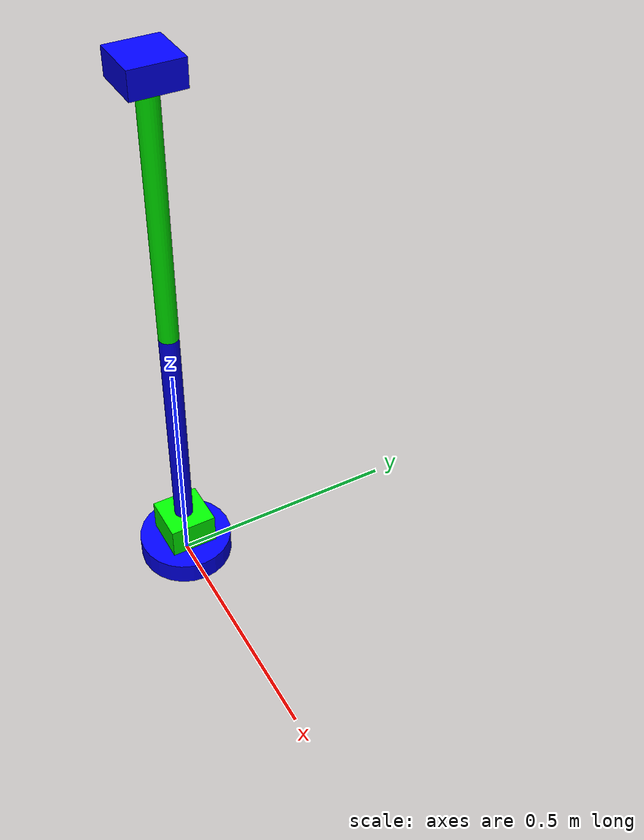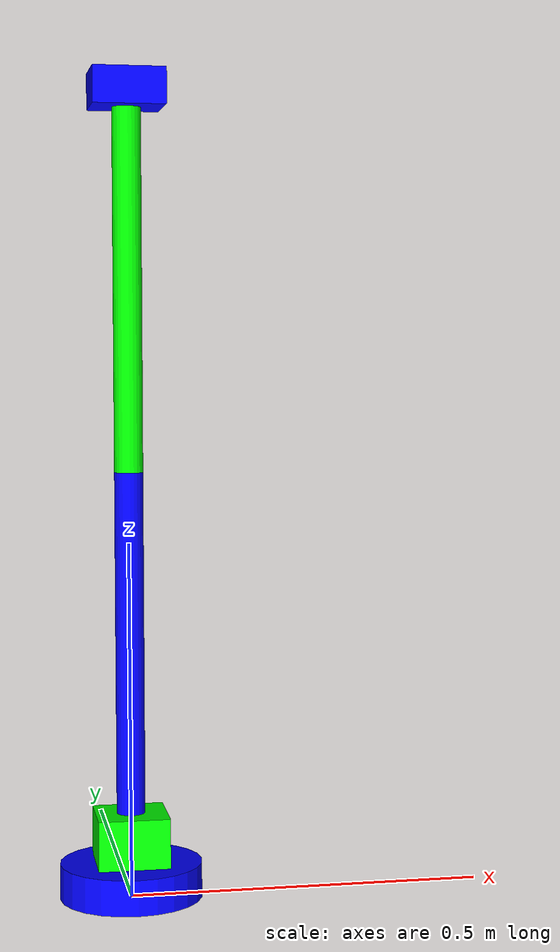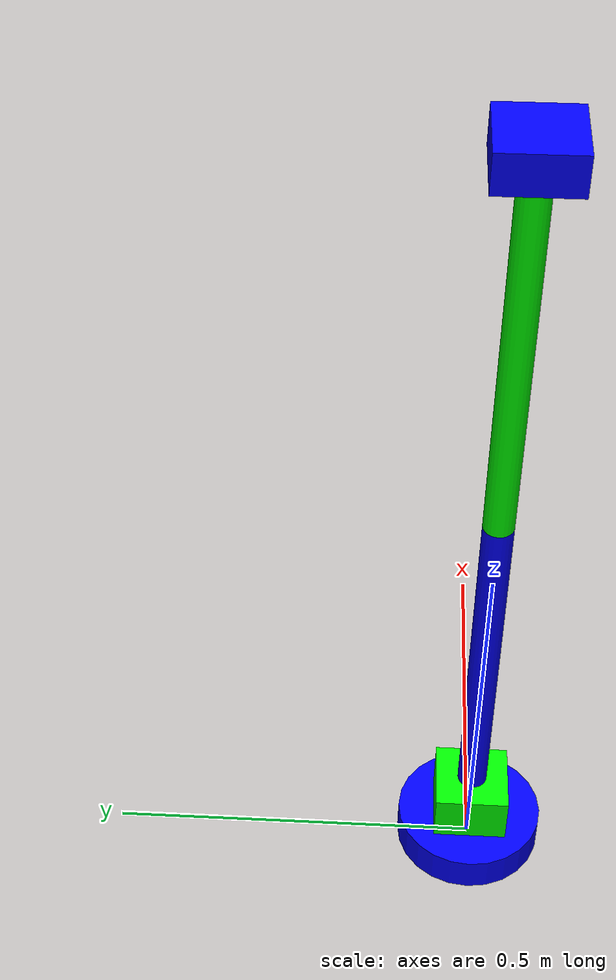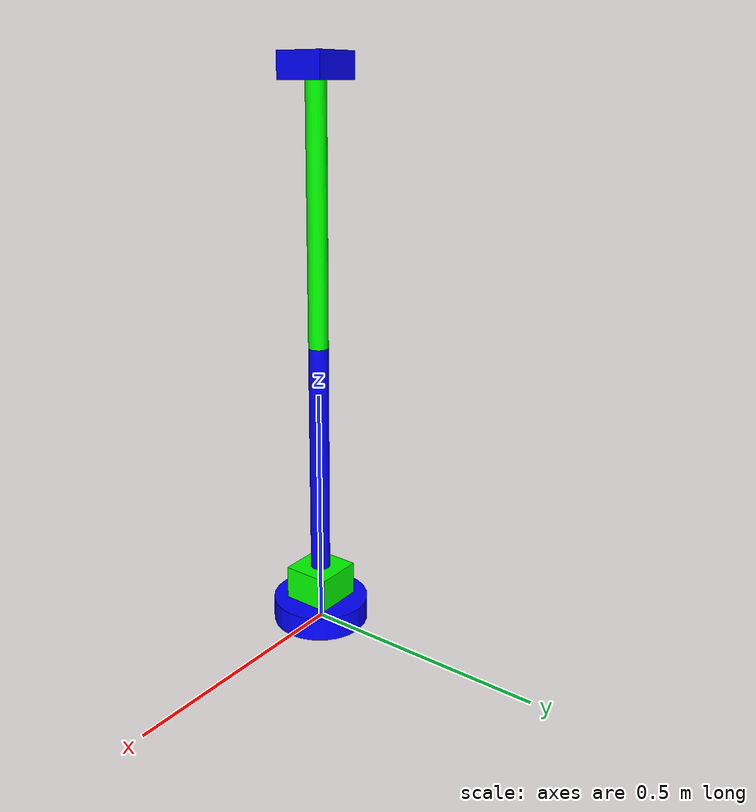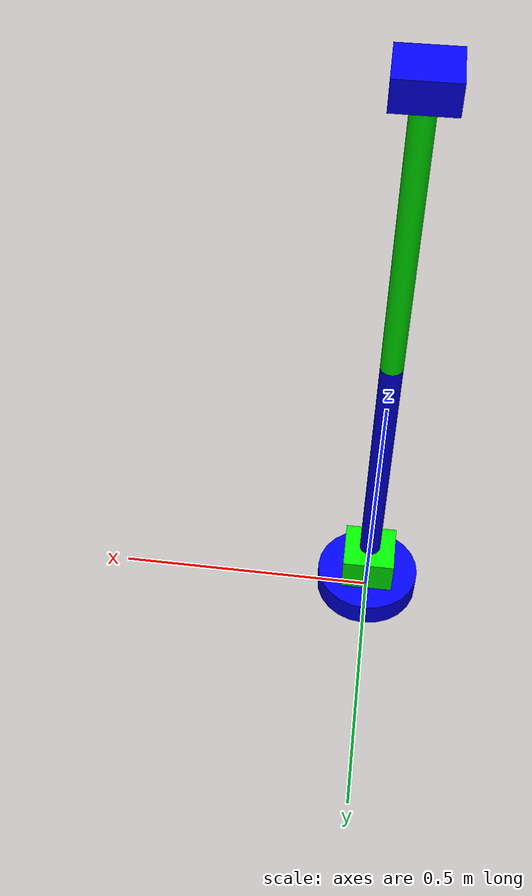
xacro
<?xml version="1.0"?>
<robot xmlns:xacro="http://www.ros.org/wiki/xacro" name="rover_arm">
    <xacro:arg name="initial_positions_file" default="initial_positions.yaml" />
    <xacro:arg name="use_mock_hardware"      default="true" />
    <xacro:arg name="can_interface"          default="can0" />
    <xacro:arg name="base_joint_connected"   default="true" />

    <!-- Import rover_arm urdf file -->
    <xacro:include filename="$(find arm_description)/urdf/arm.urdf" />

    <!-- Import control_xacro -->
    <xacro:include filename="rover_arm.ros2_control.xacro" />

    <xacro:rover_arm_ros2_control
        name="RoverArmSystem"
        initial_positions_file="$(arg initial_positions_file)"
        use_mock_hardware="$(arg use_mock_hardware)"
        can_interface="$(arg can_interface)"
        base_joint_connected="$(arg base_joint_connected)" />

</robot>

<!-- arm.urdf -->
<robot name="rover_arm">

    <material name="blue">
        <color rgba="0 0 1 1"/>
    </material>

    <material name="green">
        <color rgba="0 1 0 1"/>
    </material>

    <link name="base_link">
        <visual>
            <geometry>
                <cylinder length="0.05" radius="0.1"/>
            </geometry>
            <origin xyz="0 0 0.025" rpy="0 0 0"/>
            <material name="blue"/>
        </visual>
        <collision>
            <geometry>
                <cylinder length="0.05" radius="0.1"/>
            </geometry>
            <origin xyz="0 0 0.025" rpy="0 0 0"/>
        </collision>
    </link>

    <link name="base_rot">
        <visual>
            <geometry>
                <box size="0.1 0.1 0.07"/>
            </geometry>
            <origin xyz="0 0 0.035" rpy="0 0 0"/>
            <material name="green"/>
        </visual>
        <collision>
            <geometry>
                <box size="0.1 0.1 0.07"/>
            </geometry>
            <origin xyz="0 0 0.035" rpy="0 0 0"/>
        </collision>
    </link>

    <link name="arm1">
        <visual>
            <geometry>
                <cylinder length="0.5" radius="0.02"/>
            </geometry>
            <origin xyz="0 0 0.25" rpy="0 0 0"/>
            <material name="blue"/>
        </visual>
        <collision>
            <geometry>
                <cylinder length="0.5" radius="0.02"/>
            </geometry>
            <origin xyz="0 0 0.25" rpy="0 0 0"/>
        </collision>
    </link>

    <link name="arm2">
        <visual>
            <geometry>
                <cylinder length="0.5" radius="0.02"/>
            </geometry>
            <origin xyz="0 0 0.25" rpy="0 0 0"/>
            <material name="green"/>
        </visual>
        <collision>
            <geometry>
                <cylinder length="0.5" radius="0.02"/>
            </geometry>
            <origin xyz="0 0 0.25" rpy="0 0 0"/>
        </collision>
    </link>

    <link name="ee_link">
        <visual>
            <geometry>
                <box size="0.1 0.1 0.05"/>
            </geometry>
            <origin xyz="0 0 0.025" rpy="0 0 0"/>
            <material name="blue"/>
        </visual>
        <collision>
            <geometry>
                <box size="0.1 0.1 0.05"/>
            </geometry>
            <origin xyz="0 0 0.025" rpy="0 0 0"/>
        </collision>
    </link>

    <joint name="base_joint" type="revolute">
        <parent link="base_link"/>
        <child link="base_rot"/>
        <origin xyz="0 0 0.05" rpy="0 0 0"/>
        <axis xyz="0 0 1"/>
        <limit effort="1000." velocity="1.0" lower="-3.14" upper="3.14"/>
    </joint>

    <joint name="shoulder_joint" type="revolute">
        <parent link="base_rot"/>
        <child link="arm1"/>
        <origin xyz="0 0 0.05" rpy="0 0 0"/>
        <axis xyz="0 1 0"/>
        <limit effort="1000." velocity="1.0" lower="-3.14" upper="3.14"/>
    </joint>

    <joint name="elbow_joint" type="revolute">
        <parent link="arm1"/>
        <child link="arm2"/>
        <origin xyz="0 0 0.5" rpy="0 0 0"/>
        <axis xyz="0 1 0"/>
        <limit effort="1000." velocity="1.0" lower="-3.14" upper="3.14"/>
    </joint>

    <joint name="ee_joint" type="fixed">
        <parent link="arm2"/>
        <child link="ee_link"/>
        <origin xyz="0 0 0.5" rpy="0 0 0"/>
    </joint>

</robot>
